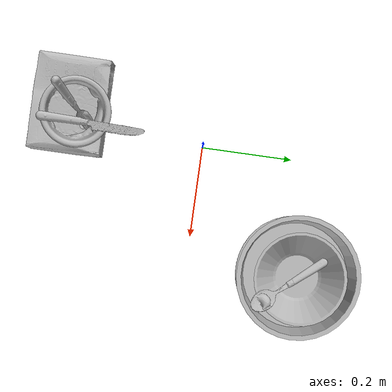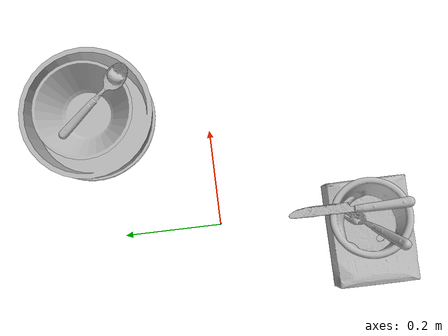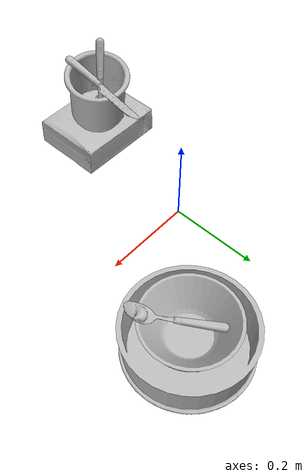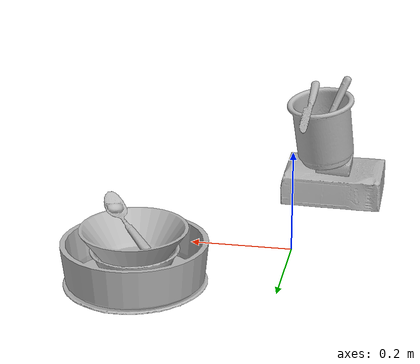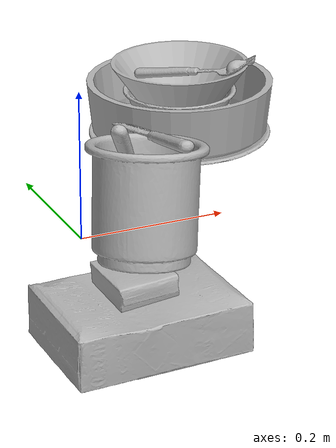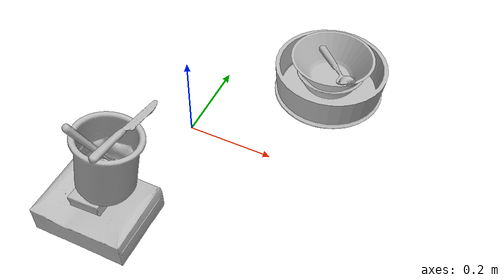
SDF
<?xml version="1.0" ?>
<sdf version="1.4">

  <world name="default">

    <light name="light1" type="point">

      <pose>0 0 1 0 0 0</pose>

      <diffuse>3 3 3 1</diffuse>

      <specular>3 3 3 1</specular>

    </light>

    <light name="light2" type="point">

      <pose>0 0.5 2 0 0 0</pose>

      <diffuse>1 1 1 1</diffuse>

      <specular>1 1 1 1</specular>

    </light>

    <light name="light3" type="point">

      <pose>0 0.5 2 0 0 0</pose>

      <diffuse>3 3 3 1</diffuse>

      <specular>3 3 3 1</specular>

    </light>

    <scene>

      <ambient>0.7 0.7 0.7</ambient>

    </scene>

    <model name="plate1">

      <link name="link_plate1">

        <collision name="default">

          <geometry>

            <mesh>

              <uri>model://plate/collision_meshes/collision.obj</uri>

              <scale>1.0 1.0 1.0</scale>

            </mesh>

          </geometry>

          <surface>

            <friction>

              <ode>

                <mu>0.5</mu>

                <mu2>0.5</mu2>

              </ode>

            </friction>

          </surface>

        </collision>

        <visual name="default">

          <geometry>

            <mesh>

              <uri>model://plate/visual_meshes/visual.dae</uri>

              <scale>1.0 1.0 1.0</scale>

            </mesh>

          </geometry>

        </visual>

        <inertial>

          <mass>0.20059238374233246</mass>

          <pose>-0.0006044621695764363 0.00027825910365208983 -0.001056200242601335 0.002218800652723057 -0.0032254723094637602 0.45260588699646775</pose>

          <inertia>

            <ixx>0.00093837525</ixx>

            <iyy>0.0009294</iyy>

            <izz>0.0018353215</izz>

            <ixy>0</ixy>

            <ixz>0</ixz>

            <iyz>0</iyz>

          </inertia>

        </inertial>

      </link>

      <pose>0.24995459616184235 0.23999027907848358 0.013735384680330753 -1.0863999968998077e-05 -3.0401866074790378e-05 -0.00039780538821323195</pose>

    </model>

    <model name="plate2">

      <link name="link_plate2">

        <collision name="default">

          <geometry>

            <mesh>

              <uri>model://pan_tefal/collision_meshes/collision.obj</uri>

              <scale>1.0 1.0 1.0</scale>

            </mesh>

          </geometry>

          <surface>

            <friction>

              <ode>

                <mu>0.5</mu>

                <mu2>0.5</mu2>

              </ode>

            </friction>

          </surface>

        </collision>

        <visual name="default">

          <geometry>

            <mesh>

              <uri>model://pan_tefal/visual_meshes/visual.dae</uri>

              <scale>1.0 1.0 1.0</scale>

            </mesh>

          </geometry>

        </visual>

        <inertial>

          <mass>0.5801199674606323</mass>

          <pose>-0.00018002555589191616 3.279062366345897e-05 -0.008514936082065105 0.0008190222895173471 -0.0003301392673675887 -0.3318501085377774</pose>

          <inertia>

            <ixx>0.00400454</ixx>

            <iyy>0.004030358</iyy>

            <izz>0.0073715877</izz>

            <ixy>0</ixy>

            <ixz>0</ixz>

            <iyz>0</iyz>

          </inertia>

        </inertial>

      </link>

      <pose>0.24999161064624786 0.2397691309452057 0.0639372318983078 0.0011296153154785478 -0.0024330522103489073 -0.0004710073010793428</pose>

    </model>

    <model name="bowl1">

      <link name="link_bowl1">

        <collision name="default">

          <geometry>

            <mesh>

              <uri>model://bowl/collision_meshes/collision.obj</uri>

              <scale>1.0 1.0 1.0</scale>

            </mesh>

          </geometry>

          <surface>

            <friction>

              <ode>

                <mu>0.5</mu>

                <mu2>0.5</mu2>

              </ode>

            </friction>

          </surface>

        </collision>

        <visual name="default">

          <geometry>

            <mesh>

              <uri>model://bowl/visual_meshes/visual.dae</uri>

              <scale>1.0 1.0 1.0</scale>

            </mesh>

          </geometry>

        </visual>

        <inertial>

          <mass>0.055578216910362244</mass>

          <pose>0.00020445502013899386 -0.0010302060982212424 -0.000804265437182039 -0.015764048263850368 0.014546844804774466 0.7140432473852318</pose>

          <inertia>

            <ixx>0.00012766755</ixx>

            <iyy>0.000124815</iyy>

            <izz>0.00021478078</izz>

            <ixy>0</ixy>

            <ixz>0</ixz>

            <iyz>0</iyz>

          </inertia>

        </inertial>

      </link>

      <pose>0.25001344084739685 0.23954539000988007 0.061392027884721756 -0.00021525815077072676 -0.0033017944384491917 -0.019078457307512255</pose>

    </model>

    <model name="bowl2">

      <link name="link_bowl2">

        <collision name="default">

          <geometry>

            <mesh>

              <uri>model://bowl_a/collision_meshes/collision.obj</uri>

              <scale>1.0 1.0 1.0</scale>

            </mesh>

          </geometry>

          <surface>

            <friction>

              <ode>

                <mu>0.5</mu>

                <mu2>0.5</mu2>

              </ode>

            </friction>

          </surface>

        </collision>

        <visual name="default">

          <geometry>

            <mesh>

              <uri>model://bowl_a/visual_meshes/visual.dae</uri>

              <scale>1.0 1.0 1.0</scale>

            </mesh>

          </geometry>

        </visual>

        <inertial>

          <mass>0.31475314497947693</mass>

          <pose>0.00027867438620887697 4.730821092380211e-05 -0.0013765294570475817 -0.0009805369688078041 -0.0010938258688624044 -0.19123886294168949</pose>

          <inertia>

            <ixx>0.00089611666</ixx>

            <iyy>0.00090161816</iyy>

            <izz>0.0015937777</izz>

            <ixy>0</ixy>

            <ixz>0</ixz>

            <iyz>0</iyz>

          </inertia>

        </inertial>

      </link>

      <pose>0.2504093647003174 0.24044980108737946 0.09636843949556351 -0.010288788791512578 -0.004192782169324957 0.004800565360371115</pose>

    </model>

    <model name="silverware1">

      <link name="link_silverware1">

        <collision name="default">

          <geometry>

            <mesh>

              <uri>model://spoon/collision_meshes/collision.obj</uri>

              <scale>1.0 1.0 1.0</scale>

            </mesh>

          </geometry>

          <surface>

            <friction>

              <ode>

                <mu>0.5</mu>

                <mu2>0.5</mu2>

              </ode>

            </friction>

          </surface>

        </collision>

        <visual name="default">

          <geometry>

            <mesh>

              <uri>model://spoon/visual_meshes/visual.dae</uri>

              <scale>1.0 1.0 1.0</scale>

            </mesh>

          </geometry>

        </visual>

        <inertial>

          <mass>0.019504988566040993</mass>

          <pose>-0.005526313092559576 -0.0016034174477681518 -0.0007271654321812093 0.03521671064592188 -0.039065845080026425 0.006150613244710899</pose>

          <inertia>

            <ixx>1.0848988e-06</ixx>

            <iyy>7.421582e-05</iyy>

            <izz>7.4750846e-05</izz>

            <ixy>0</ixy>

            <ixz>0</ixz>

            <iyz>0</iyz>

          </inertia>

        </inertial>

      </link>

      <pose>0.26643437147140503 0.2192898392677307 0.12126486003398895 0.09503398433542122 -0.19322421744194246 -0.9001094052621653</pose>

    </model>

    <model name="box1">

      <link name="link_box1">

        <collision name="default">

          <geometry>

            <mesh>

              <uri>model://cracker_box/collision_meshes/collision.obj</uri>

              <scale>1.0 1.0 1.0</scale>

            </mesh>

          </geometry>

          <surface>

            <friction>

              <ode>

                <mu>0.5</mu>

                <mu2>0.5</mu2>

              </ode>

            </friction>

          </surface>

        </collision>

        <visual name="default">

          <geometry>

            <mesh>

              <uri>model://cracker_box/visual_meshes/visual.dae</uri>

              <scale>1.0 1.0 1.0</scale>

            </mesh>

          </geometry>

        </visual>

        <inertial>

          <mass>2.5078790187835693</mass>

          <pose>0.0009464150061830878 0.00025434247800149024 -0.0017029535956680775 -0.00031620768203149627 -0.01110648960041945 0.002546794303792924</pose>

          <inertia>

            <ixx>0.0063789245</ixx>

            <iyy>0.010532858</iyy>

            <izz>0.015031353</izz>

            <ixy>0</ixy>

            <ixz>0</ixz>

            <iyz>0</iyz>

          </inertia>

        </inertial>

      </link>

      <pose>-0.05030278116464615 -0.2994323968887329 0.0364818349480629 -0.01178773405374905 -0.007365749572574825 0.001020873473222913</pose>

    </model>

    <model name="box2">

      <link name="link_box2">

        <collision name="default">

          <geometry>

            <mesh>

              <uri>model://gelatin_box/collision_meshes/collision.obj</uri>

              <scale>1.0 1.0 1.0</scale>

            </mesh>

          </geometry>

          <surface>

            <friction>

              <ode>

                <mu>0.5</mu>

                <mu2>0.5</mu2>

              </ode>

            </friction>

          </surface>

        </collision>

        <visual name="default">

          <geometry>

            <mesh>

              <uri>model://gelatin_box/visual_meshes/visual.dae</uri>

              <scale>1.0 1.0 1.0</scale>

            </mesh>

          </geometry>

        </visual>

        <inertial>

          <mass>0.1847851723432541</mass>

          <pose>0.0004319618456065655 0.00011156872642459348 -0.0003640321083366871 -0.001050372098056681 -0.004755818221834168 0.016440563197305347</pose>

          <inertia>

            <ixx>0.00013044327</ixx>

            <iyy>9.317494e-05</iyy>

            <izz>0.0001985637</izz>

            <ixy>0</ixy>

            <ixz>0</ixz>

            <iyz>0</iyz>

          </inertia>

        </inertial>

      </link>

      <pose>-0.052705440670251846 -0.29182347655296326 0.08215504139661789 -0.009506276702518753 -0.07740986053366213 -0.007187476403451559</pose>

    </model>

    <model name="cup1">

      <link name="link_cup1">

        <collision name="default">

          <geometry>

            <mesh>

              <uri>model://d_cups/collision_meshes/collision.obj</uri>

              <scale>2.0 2.0 2.0</scale>

            </mesh>

          </geometry>

          <surface>

            <friction>

              <ode>

                <mu>0.5</mu>

                <mu2>0.5</mu2>

              </ode>

            </friction>

          </surface>

        </collision>

        <visual name="default">

          <geometry>

            <mesh>

              <uri>model://d_cups/visual_meshes/visual.dae</uri>

              <scale>2.0 2.0 2.0</scale>

            </mesh>

          </geometry>

        </visual>

        <inertial>

          <mass>0.47328615188598633</mass>

          <pose>0.0016136143822222948 0.0038234798703342676 -0.004533303435891867 0.24012870248045765 -0.247092443015796 0.5942312682521343</pose>

          <inertia>

            <ixx>0.0015850074</ixx>

            <iyy>0.0015804201</iyy>

            <izz>0.0014347013</izz>

            <ixy>0</ixy>

            <ixz>0</ixz>

            <iyz>0</iyz>

          </inertia>

        </inertial>

      </link>

      <pose>-0.02805623784661293 -0.26794955134391785 0.16061988472938538 -0.15480721293688604 0.11699057247274339 0.07765677604196622</pose>

    </model>

    <model name="silverware2">

      <link name="link_silverware2">

        <collision name="default">

          <geometry>

            <mesh>

              <uri>model://knife/collision_meshes/collision.obj</uri>

              <scale>1.0 1.0 1.0</scale>

            </mesh>

          </geometry>

          <surface>

            <friction>

              <ode>

                <mu>0.5</mu>

                <mu2>0.5</mu2>

              </ode>

            </friction>

          </surface>

        </collision>

        <visual name="default">

          <geometry>

            <mesh>

              <uri>model://knife/visual_meshes/visual.dae</uri>

              <scale>1.0 1.0 1.0</scale>

            </mesh>

          </geometry>

        </visual>

        <inertial>

          <mass>0.03430156037211418</mass>

          <pose>-0.02378525398671627 0.0015275129117071629 5.062017953605391e-05 0.07305950900181668 0.01724842494985857 -0.007409825116106198</pose>

          <inertia>

            <ixx>9.736174e-07</ixx>

            <iyy>0.00013178105</iyy>

            <izz>0.00013209462</izz>

            <ixy>0</ixy>

            <ixz>0</ixz>

            <iyz>0</iyz>

          </inertia>

        </inertial>

      </link>

      <pose>-0.0008945254376158118 -0.2242564857006073 0.22331230342388153 0.049764093347197516 0.21249652788279677 1.5593107069816354</pose>

    </model>

    <model name="silverware3">

      <link name="link_silverware3">

        <collision name="default">

          <geometry>

            <mesh>

              <uri>model://fork/collision_meshes/collision.obj</uri>

              <scale>1.0 1.0 1.0</scale>

            </mesh>

          </geometry>

          <surface>

            <friction>

              <ode>

                <mu>0.5</mu>

                <mu2>0.5</mu2>

              </ode>

            </friction>

          </surface>

        </collision>

        <visual name="default">

          <geometry>

            <mesh>

              <uri>model://fork/visual_meshes/visual.dae</uri>

              <scale>1.0 1.0 1.0</scale>

            </mesh>

          </geometry>

        </visual>

        <inertial>

          <mass>0.014111565425992012</mass>

          <pose>-0.02957005426287651 0.0004658825055230409 0.00032188615296036005 -0.01355195006397287 -0.010977841645129428 0.014453906946454091</pose>

          <inertia>

            <ixx>4.9469025e-07</ixx>

            <iyy>3.684124e-05</iyy>

            <izz>3.7062495e-05</izz>

            <ixy>0</ixy>

            <ixz>0</ixz>

            <iyz>0</iyz>

          </inertia>

        </inertial>

      </link>

      <pose>-0.039717838168144226 -0.2703303098678589 0.18478485941886902 -0.10423712751575309 1.0887778310946685 0.6841414597601213</pose>

    </model>

  </world>

</sdf>
